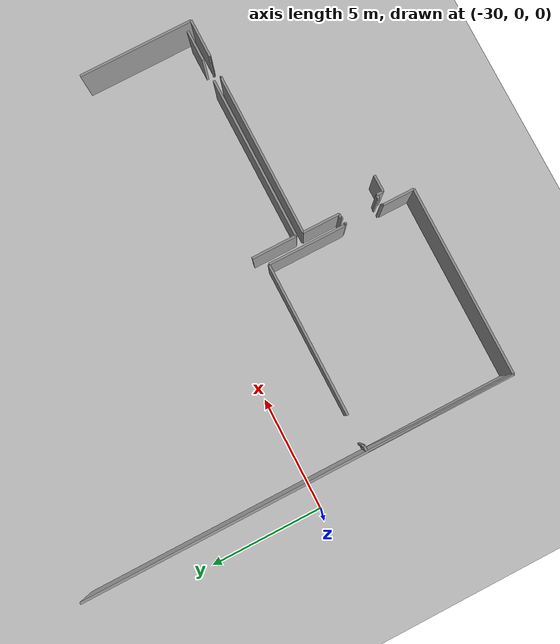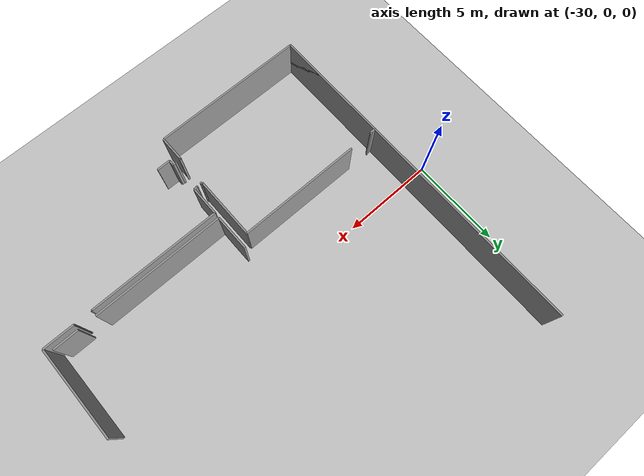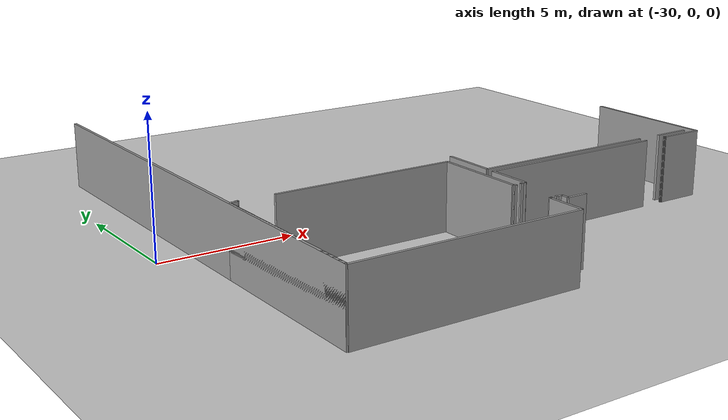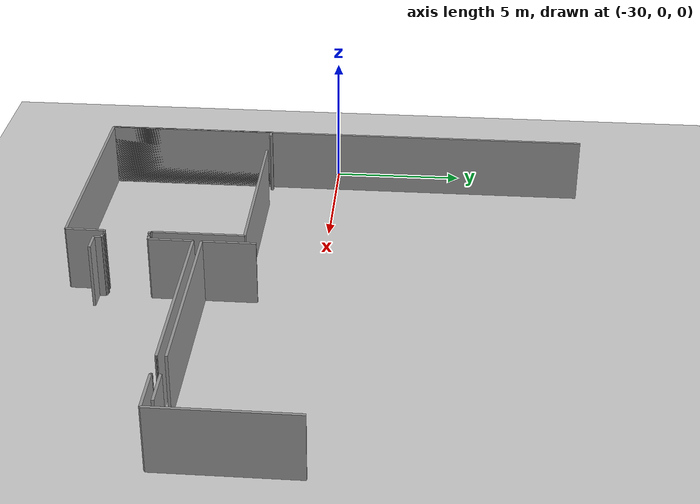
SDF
<sdf version="1.6">
 <world name="default">
  <model name="ground_plane">
   <static>1</static>
   <link name="link">
    <collision name="collision">
     <geometry><plane><normal>0 0 1</normal><size>100 100</size></plane></geometry>
     <surface><friction><ode><mu>100</mu><mu2>50</mu2></ode></friction></surface>
    </collision>
    <visual name="visual">
     <cast_shadows>0</cast_shadows>
     <geometry><plane><normal>0 0 1</normal><size>100 100</size></plane></geometry>
     <material>
      <script><uri>file://media/materials/scripts/gazebo.material</uri><name>Gazebo/Grey</name></script>
     </material>
    </visual>
   </link>
  </model>
  <model name="0510030942_A_40_1_101">
   <static>1</static>
   <link name="Wall_9">
    <collision name="Wall_9_Collision">
     <geometry><box><size>6.52191042652 0.1 2.5</size></box></geometry>
     <pose>3.26095521326 0 1.25 0 0 0</pose>
    </collision>
    <visual name="Wall_9_Visual">
     <pose>3.26095521326 0 1.25 0 0 0</pose>
     <geometry><box><size>6.52191042652 0.1 2.5</size></box></geometry>
     <material>
      <script><uri>file://media/materials/scripts/gazebo.material</uri><name>Gazebo/Grey</name></script>
      <ambient>1 1 1 1</ambient>
     </material>
    </visual>
    <pose>0.0 -19.0235626048 0 0 0 1.57079632679</pose>
   </link>
   <link name="Wall_10">
    <collision name="Wall_10_Collision">
     <geometry><box><size>0.291164658635 0.1 2.5</size></box></geometry>
     <pose>0.145582329317 0 1.25 0 0 0</pose>
    </collision>
    <visual name="Wall_10_Visual">
     <pose>0.145582329317 0 1.25 0 0 0</pose>
     <geometry><box><size>0.291164658635 0.1 2.5</size></box></geometry>
     <material>
      <script><uri>file://media/materials/scripts/gazebo.material</uri><name>Gazebo/Grey</name></script>
      <ambient>1 1 1 1</ambient>
     </material>
    </visual>
    <pose>0.0 -12.5016521783 0 0 0 0.0</pose>
   </link>
   <link name="Wall_11">
    <collision name="Wall_11_Collision">
     <geometry><box><size>0.0829901886025 0.1 2.5</size></box></geometry>
     <pose>0.0414950943013 0 1.25 0 0 0</pose>
    </collision>
    <visual name="Wall_11_Visual">
     <pose>0.0414950943013 0 1.25 0 0 0</pose>
     <geometry><box><size>0.0829901886025 0.1 2.5</size></box></geometry>
     <material>
      <script><uri>file://media/materials/scripts/gazebo.material</uri><name>Gazebo/Grey</name></script>
      <ambient>1 1 1 1</ambient>
     </material>
    </visual>
    <pose>0.291164658635 -12.5016521783 0 0 0 1.57079632679</pose>
   </link>
   <link name="Wall_15">
    <collision name="Wall_15_Collision">
     <geometry><box><size>6.7271618118 0.1 2.5</size></box></geometry>
     <pose>3.3635809059 0 1.25 0 0 0</pose>
    </collision>
    <visual name="Wall_15_Visual">
     <pose>3.3635809059 0 1.25 0 0 0</pose>
     <geometry><box><size>6.7271618118 0.1 2.5</size></box></geometry>
     <material>
      <script><uri>file://media/materials/scripts/gazebo.material</uri><name>Gazebo/Grey</name></script>
      <ambient>1 1 1 1</ambient>
     </material>
    </visual>
    <pose>1.60121498653 -12.4935183773 0 0 0 0.0</pose>
   </link>
   <link name="Wall_16">
    <collision name="Wall_16_Collision">
     <geometry><box><size>3.41822988155 0.1 2.5</size></box></geometry>
     <pose>1.70911494078 0 1.25 0 0 0</pose>
    </collision>
    <visual name="Wall_16_Visual">
     <pose>1.70911494078 0 1.25 0 0 0</pose>
     <geometry><box><size>3.41822988155 0.1 2.5</size></box></geometry>
     <material>
      <script><uri>file://media/materials/scripts/gazebo.material</uri><name>Gazebo/Grey</name></script>
      <ambient>1 1 1 1</ambient>
     </material>
    </visual>
    <pose>8.32837679833 -12.4935183773 0 0 0 -1.57079632679</pose>
   </link>
   <link name="Wall_17">
    <collision name="Wall_17_Collision">
     <geometry><box><size>0.0514717096233 0.1 2.5</size></box></geometry>
     <pose>0.0257358548117 0 1.25 0 0 0</pose>
    </collision>
    <visual name="Wall_17_Visual">
     <pose>0.0257358548117 0 1.25 0 0 0</pose>
     <geometry><box><size>0.0514717096233 0.1 2.5</size></box></geometry>
     <material>
      <script><uri>file://media/materials/scripts/gazebo.material</uri><name>Gazebo/Grey</name></script>
      <ambient>1 1 1 1</ambient>
     </material>
    </visual>
    <pose>8.32837679833 -15.9117482589 0 0 0 0.0</pose>
   </link>
   <link name="Wall_18">
    <collision name="Wall_18_Collision">
     <geometry><box><size>0.0913781709115 0.1 2.5</size></box></geometry>
     <pose>0.0456890854557 0 1.25 0 0 0</pose>
    </collision>
    <visual name="Wall_18_Visual">
     <pose>0.0456890854557 0 1.25 0 0 0</pose>
     <geometry><box><size>0.0913781709115 0.1 2.5</size></box></geometry>
     <material>
      <script><uri>file://media/materials/scripts/gazebo.material</uri><name>Gazebo/Grey</name></script>
      <ambient>1 1 1 1</ambient>
     </material>
    </visual>
    <pose>8.37984850796 -15.9117482589 0 0 0 -1.57079632679</pose>
   </link>
   <link name="Wall_19">
    <collision name="Wall_19_Collision">
     <geometry><box><size>0.0721874841137 0.1 2.5</size></box></geometry>
     <pose>0.0360937420568 0 1.25 0 0 0</pose>
    </collision>
    <visual name="Wall_19_Visual">
     <pose>0.0360937420568 0 1.25 0 0 0</pose>
     <geometry><box><size>0.0721874841137 0.1 2.5</size></box></geometry>
     <material>
      <script><uri>file://media/materials/scripts/gazebo.material</uri><name>Gazebo/Grey</name></script>
      <ambient>1 1 1 1</ambient>
     </material>
    </visual>
    <pose>8.37984850796 -17.5739667531 0 0 0 -1.57079632679</pose>
   </link>
   <link name="Wall_20">
    <collision name="Wall_20_Collision">
     <geometry><box><size>0.0322810228255 0.1 2.5</size></box></geometry>
     <pose>0.0161405114127 0 1.25 0 0 0</pose>
    </collision>
    <visual name="Wall_20_Visual">
     <pose>0.0161405114127 0 1.25 0 0 0</pose>
     <geometry><box><size>0.0322810228255 0.1 2.5</size></box></geometry>
     <material>
      <script><uri>file://media/materials/scripts/gazebo.material</uri><name>Gazebo/Grey</name></script>
      <ambient>1 1 1 1</ambient>
     </material>
    </visual>
    <pose>8.37984850796 -17.6461542372 0 0 0 3.14159265359</pose>
   </link>
   <link name="Wall_21">
    <collision name="Wall_21_Collision">
     <geometry><box><size>1.39405724162 0.1 2.5</size></box></geometry>
     <pose>0.697028620812 0 1.25 0 0 0</pose>
    </collision>
    <visual name="Wall_21_Visual">
     <pose>0.697028620812 0 1.25 0 0 0</pose>
     <geometry><box><size>1.39405724162 0.1 2.5</size></box></geometry>
     <material>
      <script><uri>file://media/materials/scripts/gazebo.material</uri><name>Gazebo/Grey</name></script>
      <ambient>1 1 1 1</ambient>
     </material>
    </visual>
    <pose>8.34756748513 -17.6461542372 0 0 0 -1.57079632679</pose>
   </link>
   <link name="Wall_22">
    <collision name="Wall_22_Collision">
     <geometry><box><size>8.34758408786 0.1 2.5</size></box></geometry>
     <pose>4.17379204393 0 1.25 0 0 0</pose>
    </collision>
    <visual name="Wall_22_Visual">
     <pose>4.17379204393 0 1.25 0 0 0</pose>
     <geometry><box><size>8.34758408786 0.1 2.5</size></box></geometry>
     <material>
      <script><uri>file://media/materials/scripts/gazebo.material</uri><name>Gazebo/Grey</name></script>
      <ambient>1 1 1 1</ambient>
     </material>
    </visual>
    <pose>8.34756748513 -19.0402114788 0 0 0 3.13959819809</pose>
   </link>
   <link name="Wall_28">
    <collision name="Wall_28_Collision">
     <geometry><box><size>1.97397183671 0.1 2.5</size></box></geometry>
     <pose>0.986985918357 0 1.25 0 0 0</pose>
    </collision>
    <visual name="Wall_28_Visual">
     <pose>0.986985918357 0 1.25 0 0 0</pose>
     <geometry><box><size>1.97397183671 0.1 2.5</size></box></geometry>
     <material>
      <script><uri>file://media/materials/scripts/gazebo.material</uri><name>Gazebo/Grey</name></script>
      <ambient>1 1 1 1</ambient>
     </material>
    </visual>
    <pose>8.85122769559 -13.9839103248 0 0 0 1.57079632679</pose>
   </link>
   <link name="Wall_36">
    <collision name="Wall_36_Collision">
     <geometry><box><size>1.37283310457 0.1 2.5</size></box></geometry>
     <pose>0.686416552285 0 1.25 0 0 0</pose>
    </collision>
    <visual name="Wall_36_Visual">
     <pose>0.686416552285 0 1.25 0 0 0</pose>
     <geometry><box><size>1.37283310457 0.1 2.5</size></box></geometry>
     <material>
      <script><uri>file://media/materials/scripts/gazebo.material</uri><name>Gazebo/Grey</name></script>
      <ambient>1 1 1 1</ambient>
     </material>
    </visual>
    <pose>18.3620558182 -13.9756494332 0 0 0 3.14159265359</pose>
   </link>
   <link name="Wall_37">
    <collision name="Wall_37_Collision">
     <geometry><box><size>7.17516107695 0.1 2.5</size></box></geometry>
     <pose>3.58758053847 0 1.25 0 0 0</pose>
    </collision>
    <visual name="Wall_37_Visual">
     <pose>3.58758053847 0 1.25 0 0 0</pose>
     <geometry><box><size>7.17516107695 0.1 2.5</size></box></geometry>
     <material>
      <script><uri>file://media/materials/scripts/gazebo.material</uri><name>Gazebo/Grey</name></script>
      <ambient>1 1 1 1</ambient>
     </material>
    </visual>
    <pose>16.0263840171 -13.9756494332 0 0 0 -3.1404413354</pose>
   </link>
   <link name="Wall_50">
    <collision name="Wall_50_Collision">
     <geometry><box><size>0.745259519089 0.1 2.5</size></box></geometry>
     <pose>0.372629759545 0 1.25 0 0 0</pose>
    </collision>
    <visual name="Wall_50_Visual">
     <pose>0.372629759545 0 1.25 0 0 0</pose>
     <geometry><box><size>0.745259519089 0.1 2.5</size></box></geometry>
     <material>
      <script><uri>file://media/materials/scripts/gazebo.material</uri><name>Gazebo/Grey</name></script>
      <ambient>1 1 1 1</ambient>
     </material>
    </visual>
    <pose>9.57056072391 -17.9064358701 0 0 0 3.14159265359</pose>
   </link>
   <link name="Wall_51">
    <collision name="Wall_51_Collision">
     <geometry><box><size>0.286589395557 0.1 2.5</size></box></geometry>
     <pose>0.143294697778 0 1.25 0 0 0</pose>
    </collision>
    <visual name="Wall_51_Visual">
     <pose>0.143294697778 0 1.25 0 0 0</pose>
     <geometry><box><size>0.286589395557 0.1 2.5</size></box></geometry>
     <material>
      <script><uri>file://media/materials/scripts/gazebo.material</uri><name>Gazebo/Grey</name></script>
      <ambient>1 1 1 1</ambient>
     </material>
    </visual>
    <pose>8.82530120482 -17.9064358701 0 0 0 1.57079632679</pose>
   </link>
   <link name="Wall_52">
    <collision name="Wall_52_Collision">
     <geometry><box><size>0.173097453104 0.1 2.5</size></box></geometry>
     <pose>0.0865487265518 0 1.25 0 0 0</pose>
    </collision>
    <visual name="Wall_52_Visual">
     <pose>0.0865487265518 0 1.25 0 0 0</pose>
     <geometry><box><size>0.173097453104 0.1 2.5</size></box></geometry>
     <material>
      <script><uri>file://media/materials/scripts/gazebo.material</uri><name>Gazebo/Grey</name></script>
      <ambient>1 1 1 1</ambient>
     </material>
    </visual>
    <pose>8.82530120482 -17.6198464745 0 0 0 3.14159265359</pose>
   </link>
   <link name="Wall_53">
    <collision name="Wall_53_Collision">
     <geometry><box><size>0.0723145747547 0.1 2.5</size></box></geometry>
     <pose>0.0361572873774 0 1.25 0 0 0</pose>
    </collision>
    <visual name="Wall_53_Visual">
     <pose>0.0361572873774 0 1.25 0 0 0</pose>
     <geometry><box><size>0.0723145747547 0.1 2.5</size></box></geometry>
     <material>
      <script><uri>file://media/materials/scripts/gazebo.material</uri><name>Gazebo/Grey</name></script>
      <ambient>1 1 1 1</ambient>
     </material>
    </visual>
    <pose>8.65220375172 -17.6198464745 0 0 0 1.57079632679</pose>
   </link>
   <link name="Wall_54">
    <collision name="Wall_54_Collision">
     <geometry><box><size>0.0671038584719 0.1 2.5</size></box></geometry>
     <pose>0.0335519292359 0 1.25 0 0 0</pose>
    </collision>
    <visual name="Wall_54_Visual">
     <pose>0.0335519292359 0 1.25 0 0 0</pose>
     <geometry><box><size>0.0671038584719 0.1 2.5</size></box></geometry>
     <material>
      <script><uri>file://media/materials/scripts/gazebo.material</uri><name>Gazebo/Grey</name></script>
      <ambient>1 1 1 1</ambient>
     </material>
    </visual>
    <pose>8.65220375172 -15.9791062986 0 0 0 1.57079632679</pose>
   </link>
   <link name="Wall_55">
    <collision name="Wall_55_Collision">
     <geometry><box><size>0.184154338874 0.1 2.5</size></box></geometry>
     <pose>0.0920771694372 0 1.25 0 0 0</pose>
    </collision>
    <visual name="Wall_55_Visual">
     <pose>0.0920771694372 0 1.25 0 0 0</pose>
     <geometry><box><size>0.184154338874 0.1 2.5</size></box></geometry>
     <material>
      <script><uri>file://media/materials/scripts/gazebo.material</uri><name>Gazebo/Grey</name></script>
      <ambient>1 1 1 1</ambient>
     </material>
    </visual>
    <pose>8.65220375172 -15.9120024401 0 0 0 0.0</pose>
   </link>
   <link name="Wall_56">
    <collision name="Wall_56_Collision">
     <geometry><box><size>1.61646586345 0.1 2.5</size></box></geometry>
     <pose>0.808232931727 0 1.25 0 0 0</pose>
    </collision>
    <visual name="Wall_56_Visual">
     <pose>0.808232931727 0 1.25 0 0 0</pose>
     <geometry><box><size>1.61646586345 0.1 2.5</size></box></geometry>
     <material>
      <script><uri>file://media/materials/scripts/gazebo.material</uri><name>Gazebo/Grey</name></script>
      <ambient>1 1 1 1</ambient>
     </material>
    </visual>
    <pose>8.83635809059 -15.9120024401 0 0 0 1.57079632679</pose>
   </link>
   <link name="Wall_57">
    <collision name="Wall_57_Collision">
     <geometry><box><size>7.19205937675 0.1 2.5</size></box></geometry>
     <pose>3.59602968837 0 1.25 0 0 0</pose>
    </collision>
    <visual name="Wall_57_Visual">
     <pose>3.59602968837 0 1.25 0 0 0</pose>
     <geometry><box><size>7.19205937675 0.1 2.5</size></box></geometry>
     <material>
      <script><uri>file://media/materials/scripts/gazebo.material</uri><name>Gazebo/Grey</name></script>
      <ambient>1 1 1 1</ambient>
     </material>
    </visual>
    <pose>8.83635809059 -14.2955365767 0 0 0 0.0</pose>
   </link>
   <link name="Wall_58">
    <collision name="Wall_58_Collision">
     <geometry><box><size>0.0219866809008 0.1 2.5</size></box></geometry>
     <pose>0.0109933404504 0 1.25 0 0 0</pose>
    </collision>
    <visual name="Wall_58_Visual">
     <pose>0.0109933404504 0 1.25 0 0 0</pose>
     <geometry><box><size>0.0219866809008 0.1 2.5</size></box></geometry>
     <material>
      <script><uri>file://media/materials/scripts/gazebo.material</uri><name>Gazebo/Grey</name></script>
      <ambient>1 1 1 1</ambient>
     </material>
    </visual>
    <pose>16.0284174673 -14.2955365767 0 0 0 1.57079632679</pose>
   </link>
   <link name="Wall_59">
    <collision name="Wall_59_Collision">
     <geometry><box><size>0.0287224848762 0.1 2.5</size></box></geometry>
     <pose>0.0143612424381 0 1.25 0 0 0</pose>
    </collision>
    <visual name="Wall_59_Visual">
     <pose>0.0143612424381 0 1.25 0 0 0</pose>
     <geometry><box><size>0.0287224848762 0.1 2.5</size></box></geometry>
     <material>
      <script><uri>file://media/materials/scripts/gazebo.material</uri><name>Gazebo/Grey</name></script>
      <ambient>1 1 1 1</ambient>
     </material>
    </visual>
    <pose>16.9765136495 -14.2735498958 0 0 0 0.0</pose>
   </link>
   <link name="Wall_60">
    <collision name="Wall_60_Collision">
     <geometry><box><size>0.0217324996187 0.1 2.5</size></box></geometry>
     <pose>0.0108662498094 0 1.25 0 0 0</pose>
    </collision>
    <visual name="Wall_60_Visual">
     <pose>0.0108662498094 0 1.25 0 0 0</pose>
     <geometry><box><size>0.0217324996187 0.1 2.5</size></box></geometry>
     <material>
      <script><uri>file://media/materials/scripts/gazebo.material</uri><name>Gazebo/Grey</name></script>
      <ambient>1 1 1 1</ambient>
     </material>
    </visual>
    <pose>17.0052361344 -14.2735498958 0 0 0 -1.57079632679</pose>
   </link>
   <link name="Wall_61">
    <collision name="Wall_61_Collision">
     <geometry><box><size>1.68992425398 0.1 2.5</size></box></geometry>
     <pose>0.844962126989 0 1.25 0 0 0</pose>
    </collision>
    <visual name="Wall_61_Visual">
     <pose>0.844962126989 0 1.25 0 0 0</pose>
     <geometry><box><size>1.68992425398 0.1 2.5</size></box></geometry>
     <material>
      <script><uri>file://media/materials/scripts/gazebo.material</uri><name>Gazebo/Grey</name></script>
      <ambient>1 1 1 1</ambient>
     </material>
    </visual>
    <pose>17.0052361344 -14.2952823954 0 0 0 0.0</pose>
   </link>
   <link name="Wall_62">
    <collision name="Wall_62_Collision">
     <geometry><box><size>5.0433379086 0.1 2.5</size></box></geometry>
     <pose>2.5216689543 0 1.25 0 0 0</pose>
    </collision>
    <visual name="Wall_62_Visual">
     <pose>2.5216689543 0 1.25 0 0 0</pose>
     <geometry><box><size>5.0433379086 0.1 2.5</size></box></geometry>
     <material>
      <script><uri>file://media/materials/scripts/gazebo.material</uri><name>Gazebo/Grey</name></script>
      <ambient>1 1 1 1</ambient>
     </material>
    </visual>
    <pose>18.6951603884 -14.2952823954 0 0 0 1.57079632679</pose>
   </link>
   <link name="Wall_112">
    <collision name="Wall_112_Collision">
     <geometry><box><size>19.0402114788 0.1 2.5</size></box></geometry>
     <pose>9.52010573941 0 1.25 0 0 0</pose>
    </collision>
    <visual name="Wall_112_Visual">
     <pose>9.52010573941 0 1.25 0 0 0</pose>
     <geometry><box><size>19.0402114788 0.1 2.5</size></box></geometry>
     <material>
      <script><uri>file://media/materials/scripts/gazebo.material</uri><name>Gazebo/Grey</name></script>
      <ambient>1 1 1 1</ambient>
     </material>
    </visual>
    <pose>0.0 -19.0402114788 0 0 0 1.57079632679</pose>
   </link>
   <pose>-28.7 9.84021147883 0 0 0 0</pose>
  </model>
 </world>
</sdf>
